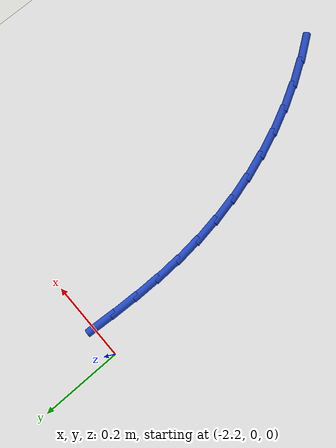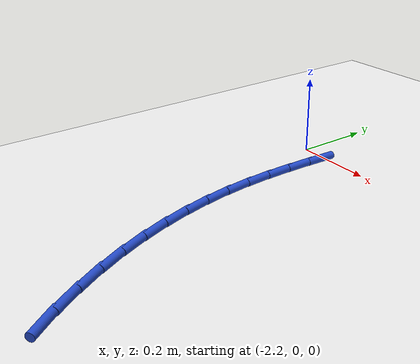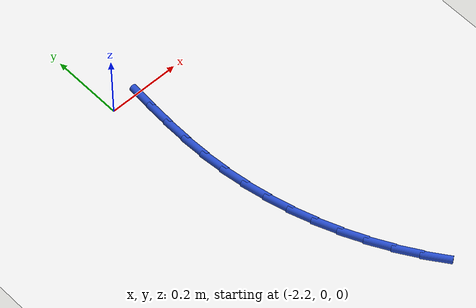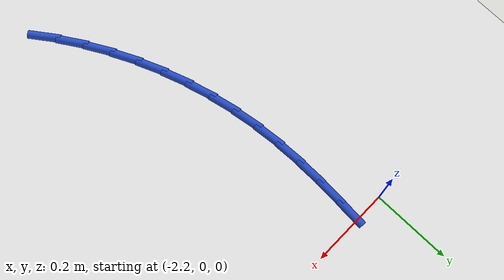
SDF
<sdf version="1.6">
 <world name="default">
  <model name="ground_plane">
   <static>1</static>
   <link name="link">
    <collision name="collision">
     <geometry><plane><normal>0 0 1</normal><size>100 100</size></plane></geometry>
     <surface><friction><ode><mu>100</mu><mu2>50</mu2></ode></friction></surface>
    </collision>
    <visual name="visual">
     <cast_shadows>0</cast_shadows>
     <geometry><plane><normal>0 0 1</normal><size>100 100</size></plane></geometry>
     <material>
      <script><uri>file://media/materials/scripts/gazebo.material</uri><name>Gazebo/WhiteGlow</name></script>
     </material>
    </visual>
   </link>
  </model>
  <model name="line">
   <link name="link_56">
    <pose>-2.1245081012199107 -0.0226230176046195 0.01 0 1.57 1.5090453828518675</pose>
    <collision name="collision">
     <geometry><cylinder><radius>0.01</radius><length>0.08</length></cylinder></geometry>
    </collision>
    <visual name="visual">
     <material>
      <script><name>Gazebo/Blue</name><uri>file://media/materials/scripts/gazebo.material</uri></script>
     </material>
     <geometry><cylinder><radius>0.01</radius><length>0.08</length></cylinder></geometry>
    </visual>
   </link>
   <link name="link_57">
    <pose>-2.1285908460588807 -0.08865527308952315 0.01 0 1.57 1.5351997380248499</pose>
    <collision name="collision">
     <geometry><cylinder><radius>0.01</radius><length>0.08</length></cylinder></geometry>
    </collision>
    <visual name="visual">
     <material>
      <script><name>Gazebo/Blue</name><uri>file://media/materials/scripts/gazebo.material</uri></script>
     </material>
     <geometry><cylinder><radius>0.01</radius><length>0.08</length></cylinder></geometry>
    </visual>
   </link>
   <link name="link_58">
    <pose>-2.130929811617157 -0.1543350935766115 0.01 0 1.57 -1.5701477742390542</pose>
    <collision name="collision">
     <geometry><cylinder><radius>0.01</radius><length>0.08</length></cylinder></geometry>
    </collision>
    <visual name="visual">
     <material>
      <script><name>Gazebo/Blue</name><uri>file://media/materials/scripts/gazebo.material</uri></script>
     </material>
     <geometry><cylinder><radius>0.01</radius><length>0.08</length></cylinder></geometry>
    </visual>
   </link>
   <link name="link_59">
    <pose>-2.130887418561963 -0.2197007279705715 0.01 0 1.57 -1.5237984631442827</pose>
    <collision name="collision">
     <geometry><cylinder><radius>0.01</radius><length>0.08</length></cylinder></geometry>
    </collision>
    <visual name="visual">
     <material>
      <script><name>Gazebo/Blue</name><uri>file://media/materials/scripts/gazebo.material</uri></script>
     </material>
     <geometry><cylinder><radius>0.01</radius><length>0.08</length></cylinder></geometry>
    </visual>
   </link>
   <link name="link_60">
    <pose>-2.127826087560523 -0.28479042517608694 0.01 0 1.57 -1.4686740676494425</pose>
    <collision name="collision">
     <geometry><cylinder><radius>0.01</radius><length>0.08</length></cylinder></geometry>
    </collision>
    <visual name="visual">
     <material>
      <script><name>Gazebo/Blue</name><uri>file://media/materials/scripts/gazebo.material</uri></script>
     </material>
     <geometry><cylinder><radius>0.01</radius><length>0.08</length></cylinder></geometry>
    </visual>
   </link>
   <link name="link_61">
    <pose>-2.1211820465405347 -0.34962377490463725 0.01 0 1.57 -1.4110762211500494</pose>
    <collision name="collision">
     <geometry><cylinder><radius>0.01</radius><length>0.08</length></cylinder></geometry>
    </collision>
    <visual name="visual">
     <material>
      <script><name>Gazebo/Blue</name><uri>file://media/materials/scripts/gazebo.material</uri></script>
     </material>
     <geometry><cylinder><radius>0.01</radius><length>0.08</length></cylinder></geometry>
    </visual>
   </link>
   <link name="link_62">
    <pose>-2.1107923578799874 -0.414119032020631 0.01 0 1.57 -1.3531472887367004</pose>
    <collision name="collision">
     <geometry><cylinder><radius>0.01</radius><length>0.08</length></cylinder></geometry>
    </collision>
    <visual name="visual">
     <material>
      <script><name>Gazebo/Blue</name><uri>file://media/materials/scripts/gazebo.material</uri></script>
     </material>
     <geometry><cylinder><radius>0.01</radius><length>0.08</length></cylinder></geometry>
    </visual>
   </link>
   <link name="link_63">
    <pose>-2.096629510112906 -0.4781602143392434 0.01 0 1.57 -1.2949919735874764</pose>
    <collision name="collision">
     <geometry><cylinder><radius>0.01</radius><length>0.08</length></cylinder></geometry>
    </collision>
    <visual name="visual">
     <material>
      <script><name>Gazebo/Blue</name><uri>file://media/materials/scripts/gazebo.material</uri></script>
     </material>
     <geometry><cylinder><radius>0.01</radius><length>0.08</length></cylinder></geometry>
    </visual>
   </link>
   <link name="link_64">
    <pose>-2.0786660975891462 -0.5416313129243752 0.01 0 1.57 -1.236725733271946</pose>
    <collision name="collision">
     <geometry><cylinder><radius>0.01</radius><length>0.08</length></cylinder></geometry>
    </collision>
    <visual name="visual">
     <material>
      <script><name>Gazebo/Blue</name><uri>file://media/materials/scripts/gazebo.material</uri></script>
     </material>
     <geometry><cylinder><radius>0.01</radius><length>0.08</length></cylinder></geometry>
    </visual>
   </link>
   <link name="link_65">
    <pose>-2.0568747146585635 -0.6044163188399292 0.01 0 1.57 -1.1784746320731423</pose>
    <collision name="collision">
     <geometry><cylinder><radius>0.01</radius><length>0.08</length></cylinder></geometry>
    </collision>
    <visual name="visual">
     <material>
      <script><name>Gazebo/Blue</name><uri>file://media/materials/scripts/gazebo.material</uri></script>
     </material>
     <geometry><cylinder><radius>0.01</radius><length>0.08</length></cylinder></geometry>
    </visual>
   </link>
   <link name="link_66">
    <pose>-2.0312279556710147 -0.666399223149808 0.01 0 1.57 -1.12037308139571</pose>
    <collision name="collision">
     <geometry><cylinder><radius>0.01</radius><length>0.08</length></cylinder></geometry>
    </collision>
    <visual name="visual">
     <material>
      <script><name>Gazebo/Blue</name><uri>file://media/materials/scripts/gazebo.material</uri></script>
     </material>
     <geometry><cylinder><radius>0.01</radius><length>0.08</length></cylinder></geometry>
    </visual>
   </link>
   <link name="link_67">
    <pose>-2.0016984149763566 -0.727464016917913 0.01 0 1.57 -1.0625611306458034</pose>
    <collision name="collision">
     <geometry><cylinder><radius>0.01</radius><length>0.08</length></cylinder></geometry>
    </collision>
    <visual name="visual">
     <material>
      <script><name>Gazebo/Blue</name><uri>file://media/materials/scripts/gazebo.material</uri></script>
     </material>
     <geometry><cylinder><radius>0.01</radius><length>0.08</length></cylinder></geometry>
    </visual>
   </link>
   <link name="link_68">
    <pose>-1.9682586869244443 -0.7874946912081471 0.01 0 1.57 -1.00518143753961</pose>
    <collision name="collision">
     <geometry><cylinder><radius>0.01</radius><length>0.08</length></cylinder></geometry>
    </collision>
    <visual name="visual">
     <material>
      <script><name>Gazebo/Blue</name><uri>file://media/materials/scripts/gazebo.material</uri></script>
     </material>
     <geometry><cylinder><radius>0.01</radius><length>0.08</length></cylinder></geometry>
    </visual>
   </link>
   <link name="link_69">
    <pose>-1.930881365865134 -0.8463752370844112 0.01 0 1.57 -0.9483760764464239</pose>
    <collision name="collision">
     <geometry><cylinder><radius>0.01</radius><length>0.08</length></cylinder></geometry>
    </collision>
    <visual name="visual">
     <material>
      <script><name>Gazebo/Blue</name><uri>file://media/materials/scripts/gazebo.material</uri></script>
     </material>
     <geometry><cylinder><radius>0.01</radius><length>0.08</length></cylinder></geometry>
    </visual>
   </link>
  </model>
 </world>
</sdf>
